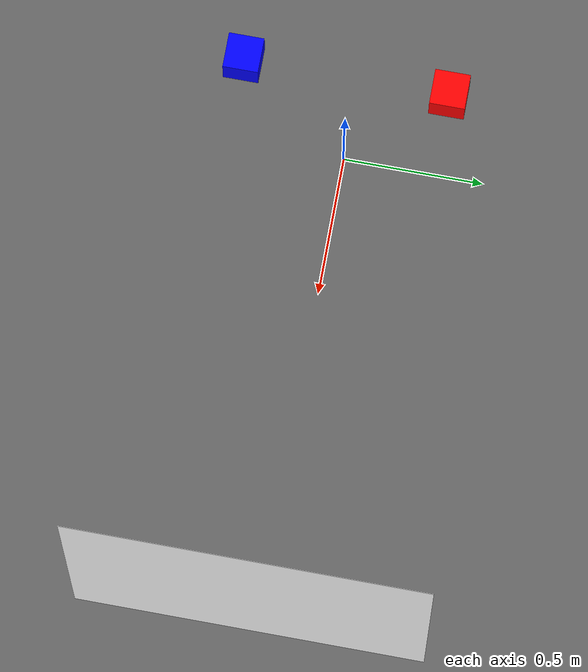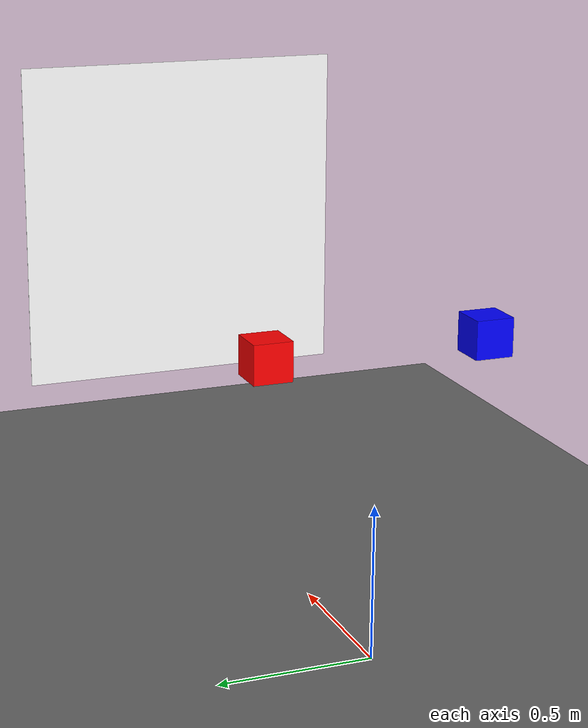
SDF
<?xml version="1.0" ?>
<sdf version="1.8">
  <world name="minimal_calib_world">

    <plugin
      filename="ignition-gazebo-physics-system"
      name="ignition::gazebo::systems::Physics">
    </plugin>

    <plugin
      filename="ignition-gazebo-scene-broadcaster-system"
      name="ignition::gazebo::systems::SceneBroadcaster">
    </plugin>

    <plugin
      filename="ignition-gazebo-sensors-system"
      name="ignition::gazebo::systems::Sensors">
      <render_engine>ogre2</render_engine>
    </plugin>

    <light name="sun" type="directional">
      <pose>0 0 10 0 0 0</pose>
      <diffuse>1 1 1 1</diffuse>
      <specular>0.5 0.5 0.5 1</specular>
      <direction>-0.5 0.1 -1</direction>
    </light>

    <model name="ground_plane">
      <static>true</static>
      <link name="ground_link">
        <collision name="ground_collision">
          <geometry>
            <plane>
              <normal>0 0 1</normal>
              <size>10 10</size>
            </plane>
          </geometry>
        </collision>
        <visual name="ground_visual">
          <geometry>
            <plane>
              <normal>0 0 1</normal>
              <size>10 10</size>
            </plane>
          </geometry>
          <material>
            <ambient>0.4 0.4 0.4 1</ambient>
            <diffuse>0.4 0.4 0.4 1</diffuse>
          </material>
        </visual>
      </link>
    </model>

    <!-- Calibration target: erstmal nur weiße Platte -->
    <include>
      <uri>model://aruco_target</uri>
      <name>calibration_target</name>
      <pose>1.8 0 1.0 0 0 0</pose>
    </include>

    <!-- Camera 1 -->
    <model name="camera_1">
      <static>true</static>
      <pose>0 -0.35 1.0 0 0 0</pose>
      <link name="camera_1_link">

        <visual name="camera_1_body">
          <geometry>
            <box>
              <size>0.12 0.12 0.12</size>
            </box>
          </geometry>
          <material>
            <ambient>0 0 1 1</ambient>
            <diffuse>0 0 1 1</diffuse>
          </material>
        </visual>

        <sensor name="camera_1_sensor" type="camera">
          <always_on>true</always_on>
          <update_rate>10</update_rate>
          <topic>/camera_1/image</topic>
          <visualize>true</visualize>
          <camera>
            <horizontal_fov>1.047</horizontal_fov>
            <image>
              <width>320</width>
              <height>240</height>
              <format>R8G8B8</format>
            </image>
            <clip>
              <near>0.1</near>
              <far>100</far>
            </clip>
          </camera>
        </sensor>

      </link>
    </model>

    <!-- Camera 2 -->
    <model name="camera_2">
      <static>true</static>
      <pose>0 0.35 1.0 0 0 0</pose>
      <link name="camera_2_link">

        <visual name="camera_2_body">
          <geometry>
            <box>
              <size>0.12 0.12 0.12</size>
            </box>
          </geometry>
          <material>
            <ambient>1 0 0 1</ambient>
            <diffuse>1 0 0 1</diffuse>
          </material>
        </visual>

        <sensor name="camera_2_sensor" type="camera">
          <always_on>true</always_on>
          <update_rate>10</update_rate>
          <topic>/camera_2/image</topic>
          <visualize>true</visualize>
          <camera>
            <horizontal_fov>1.047</horizontal_fov>
            <image>
              <width>320</width>
              <height>240</height>
              <format>R8G8B8</format>
            </image>
            <clip>
              <near>0.1</near>
              <far>100</far>
            </clip>
          </camera>
        </sensor>

      </link>
    </model>

  </world>
</sdf>

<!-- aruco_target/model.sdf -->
<sdf version="1.8">
  <model name="aruco_target">
    <static>true</static>

    <link name="aruco_target_link">

      <visual name="aruco_target_visual">
        <!-- Plane normal points toward camera direction -->
        <pose>0 0 0 0 -1.5708 0</pose>

        <geometry>
          <plane>
            <normal>0 0 1</normal>
            <size>1.20 1.20</size>
          </plane>
        </geometry>

        <material>
          <ambient>1 1 1 1</ambient>
          <diffuse>1 1 1 1</diffuse>
          <specular>0 0 0 1</specular>

          <pbr>
            <metal>
              <albedo_map>materials/textures/aruco_6x6_250_id23.png</albedo_map>
              <roughness>1.0</roughness>
              <metalness>0.0</metalness>
            </metal>
          </pbr>
        </material>
      </visual>

    </link>
  </model>
</sdf>
